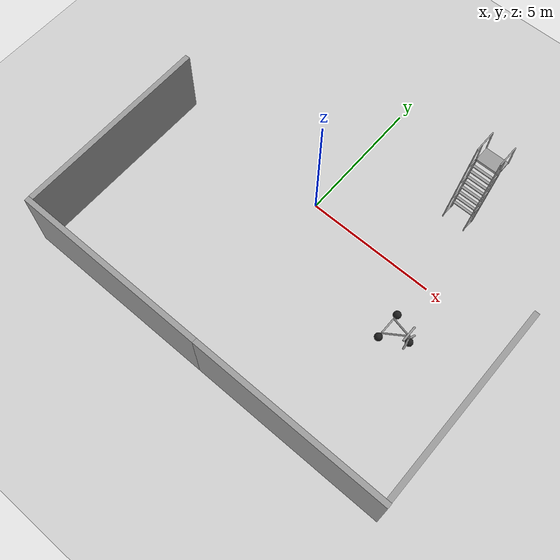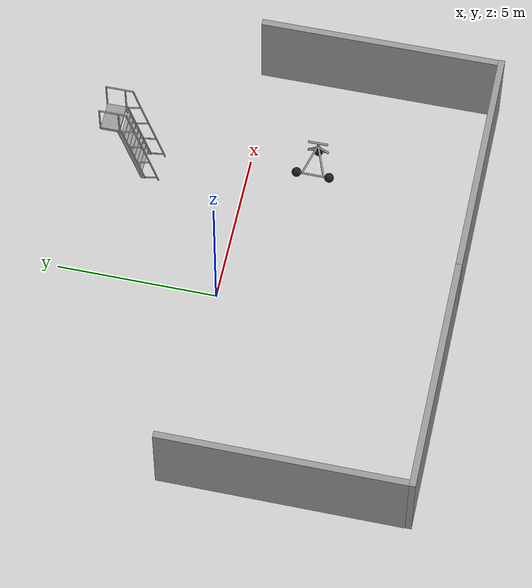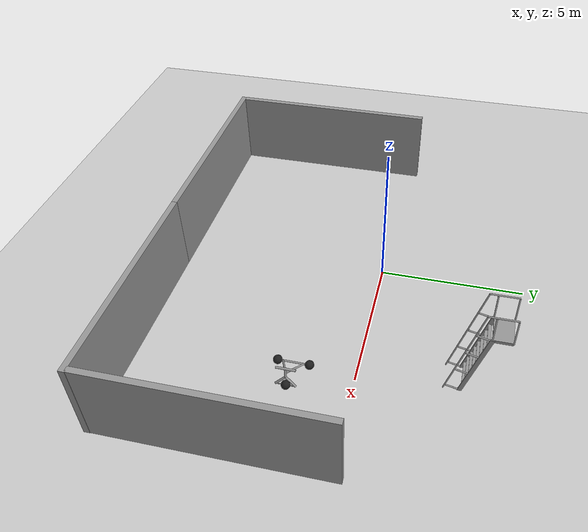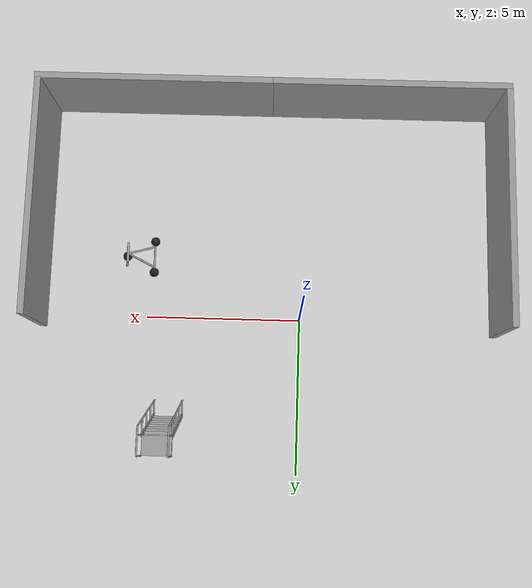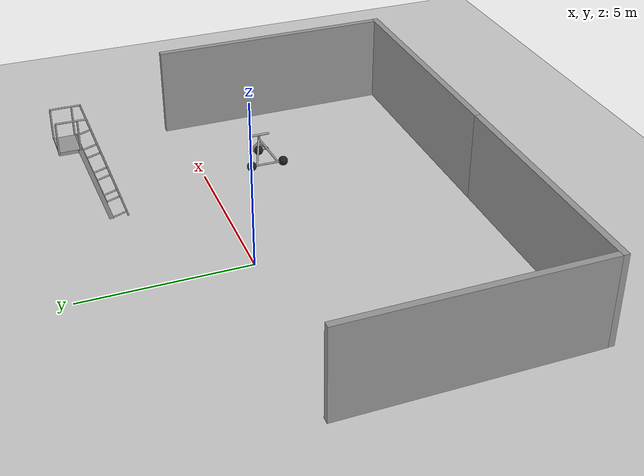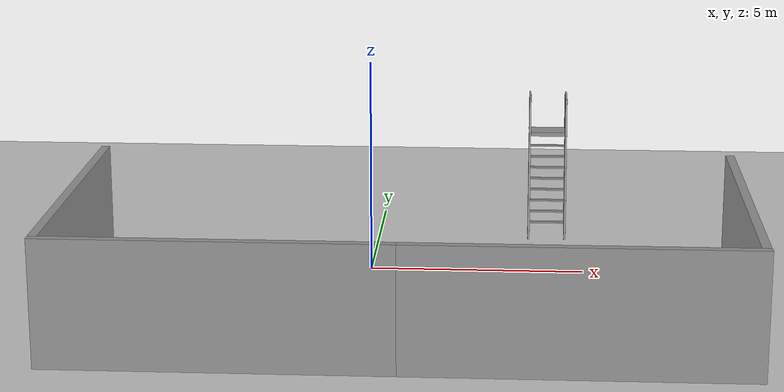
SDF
<sdf version="1.6">
 <world name="default">
  <model name="ground_plane">
   <static>1</static>
   <link name="link">
    <collision name="collision">
     <geometry><plane><normal>0 0 1</normal><size>100 100</size></plane></geometry>
     <surface>
      <contact><collide_bitmask>65535</collide_bitmask></contact>
      <friction><ode><mu>100</mu><mu2>50</mu2></ode></friction>
     </surface>
    </collision>
    <visual name="visual">
     <cast_shadows>0</cast_shadows>
     <geometry><plane><normal>0 0 1</normal><size>100 100</size></plane></geometry>
     <material>
      <script><uri>file://media/materials/scripts/gazebo.material</uri><name>Gazebo/Grey</name></script>
     </material>
    </visual>
   </link>
  </model>
  <model name="grey_wall_2">
   <static>1</static>
   <link name="link">
    <pose>0 0 1.4 0 -0 0</pose>
    <collision name="collision"><geometry><box><size>7.5 0.2 2.8</size></box></geometry></collision>
    <visual name="visual">
     <cast_shadows>0</cast_shadows>
     <geometry><box><size>7.5 0.2 2.8</size></box></geometry>
     <material>
      <script>
       <uri>model://grey_wall/materials/scripts</uri>
       <uri>model://grey_wall/materials/textures</uri>
       <name>vrc/grey_wall</name>
      </script>
     </material>
    </visual>
   </link>
   <pose>-6.37855 -3.34858 0 0 -0 1.57205</pose>
  </model>
  <model name="grey_wall_3">
   <static>1</static>
   <link name="link">
    <pose>0 0 1.4 0 -0 0</pose>
    <collision name="collision"><geometry><box><size>7.5 0.2 2.8</size></box></geometry></collision>
    <visual name="visual">
     <cast_shadows>0</cast_shadows>
     <geometry><box><size>7.5 0.2 2.8</size></box></geometry>
     <material>
      <script>
       <uri>model://grey_wall/materials/scripts</uri>
       <uri>model://grey_wall/materials/textures</uri>
       <name>vrc/grey_wall</name>
      </script>
     </material>
    </visual>
   </link>
   <pose>-2.71504 -7.18953 0 0 -0 0</pose>
  </model>
  <model name="grey_wall_4">
   <static>1</static>
   <link name="link">
    <pose>0 0 1.4 0 -0 0</pose>
    <collision name="collision"><geometry><box><size>7.5 0.2 2.8</size></box></geometry></collision>
    <visual name="visual">
     <cast_shadows>0</cast_shadows>
     <geometry><box><size>7.5 0.2 2.8</size></box></geometry>
     <material>
      <script>
       <uri>model://grey_wall/materials/scripts</uri>
       <uri>model://grey_wall/materials/textures</uri>
       <name>vrc/grey_wall</name>
      </script>
     </material>
    </visual>
   </link>
   <pose>4.77128 -7.18953 0 0 -0 0</pose>
  </model>
  <model name="grey_wall_5">
   <static>1</static>
   <link name="link">
    <pose>0 0 1.4 0 -0 0</pose>
    <collision name="collision"><geometry><box><size>7.5 0.2 2.8</size></box></geometry></collision>
    <visual name="visual">
     <cast_shadows>0</cast_shadows>
     <geometry><box><size>7.5 0.2 2.8</size></box></geometry>
     <material>
      <script>
       <uri>model://grey_wall/materials/scripts</uri>
       <uri>model://grey_wall/materials/textures</uri>
       <name>vrc/grey_wall</name>
      </script>
     </material>
    </visual>
   </link>
   <pose>8.40165 -3.37412 0 0 0 -1.56823</pose>
  </model>
  <model name="ladder_75deg_2rails">
   <static>1</static>
   <link name="step0">
    <pose>0 0.071453 0.266667 0 -0 0</pose>
    <inertial>
     <mass>9.75482</mass>
     <inertia>
      <ixx>0.00957124</ixx>
      <iyy>0.65963</iyy>
      <izz>0.666842</izz>
      <ixy>0</ixy>
      <ixz>0</ixz>
      <iyz>0</iyz>
     </inertia>
    </inertial>
    <collision name="collision"><geometry><box><size>0.9 0.1016 0.0381</size></box></geometry></collision>
    <visual name="visual">
     <geometry><box><size>0.9 0.1016 0.0381</size></box></geometry>
     <material>
      <script><uri>file://media/materials/scripts/gazebo.material</uri><name>Gazebo/Grey</name></script>
     </material>
    </visual>
   </link>
   <link name="step1">
    <pose>0 0.142906 0.533333 0 -0 0</pose>
    <inertial>
     <mass>9.75482</mass>
     <inertia>
      <ixx>0.00957124</ixx>
      <iyy>0.65963</iyy>
      <izz>0.666842</izz>
      <ixy>0</ixy>
      <ixz>0</ixz>
      <iyz>0</iyz>
     </inertia>
    </inertial>
    <collision name="collision"><geometry><box><size>0.9 0.1016 0.0381</size></box></geometry></collision>
    <visual name="visual">
     <geometry><box><size>0.9 0.1016 0.0381</size></box></geometry>
     <material>
      <script><uri>file://media/materials/scripts/gazebo.material</uri><name>Gazebo/Grey</name></script>
     </material>
    </visual>
   </link>
   <link name="step2">
    <pose>0 0.214359 0.8 0 -0 0</pose>
    <inertial>
     <mass>9.75482</mass>
     <inertia>
      <ixx>0.00957124</ixx>
      <iyy>0.65963</iyy>
      <izz>0.666842</izz>
      <ixy>0</ixy>
      <ixz>0</ixz>
      <iyz>0</iyz>
     </inertia>
    </inertial>
    <collision name="collision"><geometry><box><size>0.9 0.1016 0.0381</size></box></geometry></collision>
    <visual name="visual">
     <geometry><box><size>0.9 0.1016 0.0381</size></box></geometry>
     <material>
      <script><uri>file://media/materials/scripts/gazebo.material</uri><name>Gazebo/Grey</name></script>
     </material>
    </visual>
   </link>
   <link name="step3">
    <pose>0 0.285812 1.06667 0 -0 0</pose>
    <inertial>
     <mass>9.75482</mass>
     <inertia>
      <ixx>0.00957124</ixx>
      <iyy>0.65963</iyy>
      <izz>0.666842</izz>
      <ixy>0</ixy>
      <ixz>0</ixz>
      <iyz>0</iyz>
     </inertia>
    </inertial>
    <collision name="collision"><geometry><box><size>0.9 0.1016 0.0381</size></box></geometry></collision>
    <visual name="visual">
     <geometry><box><size>0.9 0.1016 0.0381</size></box></geometry>
     <material>
      <script><uri>file://media/materials/scripts/gazebo.material</uri><name>Gazebo/Grey</name></script>
     </material>
    </visual>
   </link>
   <link name="step4">
    <pose>0 0.357266 1.33333 0 -0 0</pose>
    <inertial>
     <mass>9.75482</mass>
     <inertia>
      <ixx>0.00957124</ixx>
      <iyy>0.65963</iyy>
      <izz>0.666842</izz>
      <ixy>0</ixy>
      <ixz>0</ixz>
      <iyz>0</iyz>
     </inertia>
    </inertial>
    <collision name="collision"><geometry><box><size>0.9 0.1016 0.0381</size></box></geometry></collision>
    <visual name="visual">
     <geometry><box><size>0.9 0.1016 0.0381</size></box></geometry>
     <material>
      <script><uri>file://media/materials/scripts/gazebo.material</uri><name>Gazebo/Grey</name></script>
     </material>
    </visual>
   </link>
   <link name="step5">
    <pose>0 0.428719 1.6 0 -0 0</pose>
    <inertial>
     <mass>9.75482</mass>
     <inertia>
      <ixx>0.00957124</ixx>
      <iyy>0.65963</iyy>
      <izz>0.666842</izz>
      <ixy>0</ixy>
      <ixz>0</ixz>
      <iyz>0</iyz>
     </inertia>
    </inertial>
    <collision name="collision"><geometry><box><size>0.9 0.1016 0.0381</size></box></geometry></collision>
    <visual name="visual">
     <geometry><box><size>0.9 0.1016 0.0381</size></box></geometry>
     <material>
      <script><uri>file://media/materials/scripts/gazebo.material</uri><name>Gazebo/Grey</name></script>
     </material>
    </visual>
   </link>
   <link name="step6">
    <pose>0 0.500172 1.86667 0 -0 0</pose>
    <inertial>
     <mass>9.75482</mass>
     <inertia>
      <ixx>0.00957124</ixx>
      <iyy>0.65963</iyy>
      <izz>0.666842</izz>
      <ixy>0</ixy>
      <ixz>0</ixz>
      <iyz>0</iyz>
     </inertia>
    </inertial>
    <collision name="collision"><geometry><box><size>0.9 0.1016 0.0381</size></box></geometry></collision>
    <visual name="visual">
     <geometry><box><size>0.9 0.1016 0.0381</size></box></geometry>
     <material>
      <script><uri>file://media/materials/scripts/gazebo.material</uri><name>Gazebo/Grey</name></script>
     </material>
    </visual>
   </link>
   <link name="step7">
    <pose>0 0.571625 2.13333 0 -0 0</pose>
    <inertial>
     <mass>9.75482</mass>
     <inertia>
      <ixx>0.00957124</ixx>
      <iyy>0.65963</iyy>
      <izz>0.666842</izz>
      <ixy>0</ixy>
      <ixz>0</ixz>
      <iyz>0</iyz>
     </inertia>
    </inertial>
    <collision name="collision"><geometry><box><size>0.9 0.1016 0.0381</size></box></geometry></collision>
    <visual name="visual">
     <geometry><box><size>0.9 0.1016 0.0381</size></box></geometry>
     <material>
      <script><uri>file://media/materials/scripts/gazebo.material</uri><name>Gazebo/Grey</name></script>
     </material>
    </visual>
   </link>
   <link name="landing">
    <pose>0 0.943078 2.4 0 -0 0</pose>
    <inertial>
     <mass>57.6072</mass>
     <inertia><ixx>1.73518</ixx><iyy>3.89545</iyy><izz>5.6167</izz><ixy>0</ixy><ixz>0</ixz><iyz>0</iyz></inertia>
    </inertial>
    <collision name="collision"><geometry><box><size>0.9 0.6 0.1016</size></box></geometry></collision>
    <visual name="visual">
     <geometry><box><size>0.9 0.6 0.1016</size></box></geometry>
     <material>
      <script><uri>file://media/materials/scripts/gazebo.material</uri><name>Gazebo/Grey</name></script>
     </material>
    </visual>
   </link>
   <link name="left_side_wall">
    <pose>-0.45 0.321539 1.2 1.309 -0 0</pose>
    <collision name="collision"><geometry><box><size>0.0508 2.56466 0.13</size></box></geometry></collision>
    <visual name="visual">
     <geometry><box><size>0.0508 2.56466 0.13</size></box></geometry>
     <material>
      <script><uri>file://media/materials/scripts/gazebo.material</uri><name>Gazebo/Grey</name></script>
     </material>
    </visual>
   </link>
   <link name="right_side_wall">
    <pose>0.45 0.321539 1.2 1.309 -0 0</pose>
    <collision name="collision"><geometry><box><size>0.0508 2.56466 0.13</size></box></geometry></collision>
    <visual name="visual">
     <geometry><box><size>0.0508 2.56466 0.13</size></box></geometry>
     <material>
      <script><uri>file://media/materials/scripts/gazebo.material</uri><name>Gazebo/Grey</name></script>
     </material>
    </visual>
   </link>
   <link name="left_railing_long">
    <pose>-0.45 -0.053461 1.66651 -0.261799 0 0</pose>
    <collision name="collision">
     <geometry><cylinder><radius>0.02413</radius><length>3.51529</length></cylinder></geometry>
    </collision>
    <visual name="visual">
     <geometry><cylinder><radius>0.02413</radius><length>3.51529</length></cylinder></geometry>
     <material>
      <script><uri>file://media/materials/scripts/gazebo.material</uri><name>Gazebo/Grey</name></script>
     </material>
    </visual>
   </link>
   <link name="left_railing_upright0">
    <pose>-0.45 -0.210089 0.056293 1.309 -0 0</pose>
    <collision name="collision">
     <geometry><cylinder><radius>0.02413</radius><length>0.482963</length></cylinder></geometry>
    </collision>
    <visual name="visual">
     <geometry><cylinder><radius>0.02413</radius><length>0.482963</length></cylinder></geometry>
     <material>
      <script><uri>file://media/materials/scripts/gazebo.material</uri><name>Gazebo/Grey</name></script>
     </material>
    </visual>
   </link>
   <link name="left_railing_upright1">
    <pose>-0.45 0.00427 0.856293 1.309 -0 0</pose>
    <collision name="collision">
     <geometry><cylinder><radius>0.02413</radius><length>0.482963</length></cylinder></geometry>
    </collision>
    <visual name="visual">
     <geometry><cylinder><radius>0.02413</radius><length>0.482963</length></cylinder></geometry>
     <material>
      <script><uri>file://media/materials/scripts/gazebo.material</uri><name>Gazebo/Grey</name></script>
     </material>
    </visual>
   </link>
   <link name="left_railing_upright2">
    <pose>-0.45 0.21863 1.65629 1.309 -0 0</pose>
    <collision name="collision">
     <geometry><cylinder><radius>0.02413</radius><length>0.482963</length></cylinder></geometry>
    </collision>
    <visual name="visual">
     <geometry><cylinder><radius>0.02413</radius><length>0.482963</length></cylinder></geometry>
     <material>
      <script><uri>file://media/materials/scripts/gazebo.material</uri><name>Gazebo/Grey</name></script>
     </material>
    </visual>
   </link>
   <link name="left_railing_upright3">
    <pose>-0.45 0.432989 2.45629 1.309 -0 0</pose>
    <collision name="collision">
     <geometry><cylinder><radius>0.02413</radius><length>0.482963</length></cylinder></geometry>
    </collision>
    <visual name="visual">
     <geometry><cylinder><radius>0.02413</radius><length>0.482963</length></cylinder></geometry>
     <material>
      <script><uri>file://media/materials/scripts/gazebo.material</uri><name>Gazebo/Grey</name></script>
     </material>
    </visual>
   </link>
   <link name="left_railing_landing_top">
    <pose>-0.45 0.818078 3.35714 1.5708 -0 0</pose>
    <collision name="collision">
     <geometry><cylinder><radius>0.02413</radius><length>0.87413</length></cylinder></geometry>
    </collision>
    <visual name="visual">
     <geometry><cylinder><radius>0.02413</radius><length>0.87413</length></cylinder></geometry>
     <material>
      <script><uri>file://media/materials/scripts/gazebo.material</uri><name>Gazebo/Grey</name></script>
     </material>
    </visual>
   </link>
   <link name="left_railing_landing_upright_0">
    <pose>-0.45 0.643078 2.86651 0 -0 0</pose>
    <collision name="collision">
     <geometry><cylinder><radius>0.02413</radius><length>0.933013</length></cylinder></geometry>
    </collision>
    <visual name="visual">
     <geometry><cylinder><radius>0.02413</radius><length>0.933013</length></cylinder></geometry>
     <material>
      <script><uri>file://media/materials/scripts/gazebo.material</uri><name>Gazebo/Grey</name></script>
     </material>
    </visual>
   </link>
   <link name="left_railing_landing_upright_1">
    <pose>-0.45 1.24308 2.86651 0 -0 0</pose>
    <collision name="collision">
     <geometry><cylinder><radius>0.02413</radius><length>0.933013</length></cylinder></geometry>
    </collision>
    <visual name="visual">
     <geometry><cylinder><radius>0.02413</radius><length>0.933013</length></cylinder></geometry>
     <material>
      <script><uri>file://media/materials/scripts/gazebo.material</uri><name>Gazebo/Grey</name></script>
     </material>
    </visual>
   </link>
   <link name="right_railing_long">
    <pose>0.45 -0.053461 1.66651 -0.261799 0 0</pose>
    <collision name="collision">
     <geometry><cylinder><radius>0.02413</radius><length>3.51529</length></cylinder></geometry>
    </collision>
    <visual name="visual">
     <geometry><cylinder><radius>0.02413</radius><length>3.51529</length></cylinder></geometry>
     <material>
      <script><uri>file://media/materials/scripts/gazebo.material</uri><name>Gazebo/Grey</name></script>
     </material>
    </visual>
   </link>
   <link name="right_railing_upright0">
    <pose>0.45 -0.210089 0.056293 1.309 -0 0</pose>
    <collision name="collision">
     <geometry><cylinder><radius>0.02413</radius><length>0.482963</length></cylinder></geometry>
    </collision>
    <visual name="visual">
     <geometry><cylinder><radius>0.02413</radius><length>0.482963</length></cylinder></geometry>
     <material>
      <script><uri>file://media/materials/scripts/gazebo.material</uri><name>Gazebo/Grey</name></script>
     </material>
    </visual>
   </link>
   <link name="right_railing_upright1">
    <pose>0.45 0.00427 0.856293 1.309 -0 0</pose>
    <collision name="collision">
     <geometry><cylinder><radius>0.02413</radius><length>0.482963</length></cylinder></geometry>
    </collision>
    <visual name="visual">
     <geometry><cylinder><radius>0.02413</radius><length>0.482963</length></cylinder></geometry>
     <material>
      <script><uri>file://media/materials/scripts/gazebo.material</uri><name>Gazebo/Grey</name></script>
     </material>
    </visual>
   </link>
   <link name="right_railing_upright2">
    <pose>0.45 0.21863 1.65629 1.309 -0 0</pose>
    <collision name="collision">
     <geometry><cylinder><radius>0.02413</radius><length>0.482963</length></cylinder></geometry>
    </collision>
    <visual name="visual">
     <geometry><cylinder><radius>0.02413</radius><length>0.482963</length></cylinder></geometry>
     <material>
      <script><uri>file://media/materials/scripts/gazebo.material</uri><name>Gazebo/Grey</name></script>
     </material>
    </visual>
   </link>
   <link name="right_railing_upright3">
    <pose>0.45 0.432989 2.45629 1.309 -0 0</pose>
    <collision name="collision">
     <geometry><cylinder><radius>0.02413</radius><length>0.482963</length></cylinder></geometry>
    </collision>
    <visual name="visual">
     <geometry><cylinder><radius>0.02413</radius><length>0.482963</length></cylinder></geometry>
     <material>
      <script><uri>file://media/materials/scripts/gazebo.material</uri><name>Gazebo/Grey</name></script>
     </material>
    </visual>
   </link>
   <link name="right_railing_landing_top">
    <pose>0.45 0.818078 3.35714 1.5708 -0 0</pose>
    <collision name="collision">
     <geometry><cylinder><radius>0.02413</radius><length>0.87413</length></cylinder></geometry>
    </collision>
    <visual name="visual">
     <geometry><cylinder><radius>0.02413</radius><length>0.87413</length></cylinder></geometry>
     <material>
      <script><uri>file://media/materials/scripts/gazebo.material</uri><name>Gazebo/Grey</name></script>
     </material>
    </visual>
   </link>
   <link name="right_railing_landing_upright_0">
    <pose>0.45 0.643078 2.86651 0 -0 0</pose>
    <collision name="collision">
     <geometry><cylinder><radius>0.02413</radius><length>0.933013</length></cylinder></geometry>
    </collision>
    <visual name="visual">
     <geometry><cylinder><radius>0.02413</radius><length>0.933013</length></cylinder></geometry>
     <material>
      <script><uri>file://media/materials/scripts/gazebo.material</uri><name>Gazebo/Grey</name></script>
     </material>
    </visual>
   </link>
   <link name="right_railing_landing_upright_1">
    <pose>0.45 1.24308 2.86651 0 -0 0</pose>
    <collision name="collision">
     <geometry><cylinder><radius>0.02413</radius><length>0.933013</length></cylinder></geometry>
    </collision>
    <visual name="visual">
     <geometry><cylinder><radius>0.02413</radius><length>0.933013</length></cylinder></geometry>
     <material>
      <script><uri>file://media/materials/scripts/gazebo.material</uri><name>Gazebo/Grey</name></script>
     </material>
    </visual>
   </link>
   <pose>4.17604 3.20232 0 0 -0 0</pose>
  </model>
  <model name="trisphere_cycle">
   <link name="frame">
    <pose>-0.408559 0 0.385023 0 -0.522021 0</pose>
    <inertial>
     <mass>10</mass>
     <inertia><ixx>0.228</ixx><iyy>0.743521</iyy><izz>0.965521</izz><ixy>0</ixy><ixz>0</ixz><iyz>0</iyz></inertia>
    </inertial>
    <collision name="axle_collision">
     <pose>-0.471335 0 0 1.5708 -0 0</pose>
     <geometry><cylinder><length>1.03923</length><radius>0.03</radius></cylinder></geometry>
    </collision>
    <visual name="axle_visual">
     <pose>-0.471335 0 0 1.5708 -0 0</pose>
     <geometry><cylinder><length>1.03923</length><radius>0.03</radius></cylinder></geometry>
     <material>
      <script><uri>file://media/materials/scripts/gazebo.material</uri><name>Gazebo/Grey</name></script>
     </material>
    </visual>
    <collision name="frame_left_collision">
     <pose>0 0.171552 0 -2.79253 1.57079 3.14159</pose>
     <geometry><cylinder><length>1.00317</length><radius>0.03</radius></cylinder></geometry>
    </collision>
    <visual name="frame_left_visual">
     <pose>0 0.171552 0 -2.79253 1.57079 3.14159</pose>
     <geometry><cylinder><length>1.00317</length><radius>0.03</radius></cylinder></geometry>
     <material>
      <script><uri>file://media/materials/scripts/gazebo.material</uri><name>Gazebo/Grey</name></script>
     </material>
    </visual>
    <collision name="frame_right_collision">
     <pose>0 -0.171552 0 2.79253 1.57079 -3.14159</pose>
     <geometry><cylinder><length>1.00317</length><radius>0.03</radius></cylinder></geometry>
    </collision>
    <visual name="frame_right_visual">
     <pose>0 -0.171552 0 2.79253 1.57079 -3.14159</pose>
     <geometry><cylinder><length>1.00317</length><radius>0.03</radius></cylinder></geometry>
     <material>
      <script><uri>file://media/materials/scripts/gazebo.material</uri><name>Gazebo/Grey</name></script>
     </material>
    </visual>
   </link>
   <link name="fork">
    <pose>0.041441 0 0.385023 0 -0.174533 0</pose>
    <inertial>
     <mass>3</mass>
     <inertia>
      <ixx>0.158203</ixx>
      <iyy>0.0583594</iyy>
      <izz>0.102656</izz>
      <ixy>0</ixy>
      <ixz>0</ixz>
      <iyz>0</iyz>
     </inertia>
    </inertial>
    <collision name="handlebars_collision">
     <pose>0 0 0.397748 1.5708 -0 0</pose>
     <geometry><cylinder><length>0.636396</length><radius>0.0375</radius></cylinder></geometry>
    </collision>
    <visual name="handlebars_visual">
     <pose>0 0 0.397748 1.5708 -0 0</pose>
     <geometry><cylinder><length>0.636396</length><radius>0.0375</radius></cylinder></geometry>
     <material>
      <script><uri>file://media/materials/scripts/gazebo.material</uri><name>Gazebo/Grey</name></script>
     </material>
    </visual>
    <collision name="headtube_collision">
     <pose>0 0 0.238649 0 -0 0</pose>
     <geometry><cylinder><length>0.318198</length><radius>0.0375</radius></cylinder></geometry>
    </collision>
    <visual name="headtube_visual">
     <pose>0 0 0.238649 0 -0 0</pose>
     <geometry><cylinder><length>0.318198</length><radius>0.0375</radius></cylinder></geometry>
     <material>
      <script><uri>file://media/materials/scripts/gazebo.material</uri><name>Gazebo/Grey</name></script>
     </material>
    </visual>
    <collision name="spindle_collision">
     <pose>0 0 -0.238649 1.5708 -0 0</pose>
     <geometry><cylinder><length>0.636396</length><radius>0.015</radius></cylinder></geometry>
    </collision>
    <visual name="spindle_visual">
     <pose>0 0 -0.238649 1.5708 -0 0</pose>
     <geometry><cylinder><length>0.636396</length><radius>0.015</radius></cylinder></geometry>
     <material>
      <script><uri>file://media/materials/scripts/gazebo.material</uri><name>Gazebo/Grey</name></script>
     </material>
    </visual>
    <collision name="fork_left_collision">
     <pose>0 0.159099 -0.07955 0.785398 -0 0</pose>
     <geometry><cylinder><length>0.45</length><radius>0.0375</radius></cylinder></geometry>
    </collision>
    <visual name="fork_left_visual">
     <pose>0 0.159099 -0.07955 0.785398 -0 0</pose>
     <geometry><cylinder><length>0.45</length><radius>0.0375</radius></cylinder></geometry>
     <material>
      <script><uri>file://media/materials/scripts/gazebo.material</uri><name>Gazebo/Grey</name></script>
     </material>
    </visual>
    <collision name="fork_right_collision">
     <pose>0 -0.159099 -0.07955 -0.785398 0 0</pose>
     <geometry><cylinder><length>0.45</length><radius>0.0375</radius></cylinder></geometry>
    </collision>
    <visual name="fork_right_visual">
     <pose>0 -0.159099 -0.07955 -0.785398 0 0</pose>
     <geometry><cylinder><length>0.45</length><radius>0.0375</radius></cylinder></geometry>
     <material>
      <script><uri>file://media/materials/scripts/gazebo.material</uri><name>Gazebo/Grey</name></script>
     </material>
    </visual>
   </link>
   <link name="wheel_front">
    <pose>0.082882 0 0.15 0 -0 0</pose>
    <inertial>
     <mass>0.5</mass>
     <inertia><ixx>0.0045</ixx><iyy>0.0045</iyy><izz>0.0045</izz><ixy>0</ixy><ixz>0</ixz><iyz>0</iyz></inertia>
    </inertial>
    <collision name="collision">
     <geometry><sphere><radius>0.15</radius></sphere></geometry>
     <surface><contact><ode><kp>1e+08</kp><kd>1</kd><min_depth>0.0005</min_depth></ode></contact></surface>
    </collision>
    <visual name="visual">
     <geometry><sphere><radius>0.15</radius></sphere></geometry>
     <material>
      <script><uri>file://media/materials/scripts/gazebo.material</uri><name>Gazebo/Black</name></script>
     </material>
    </visual>
   </link>
   <joint name="wheel_front_steer" type="revolute">
    <parent>frame</parent>
    <child>fork</child>
    <axis>
     <xyz>0 0 1</xyz>
     <limit><lower>-0.959931</lower><upper>0.959931</upper></limit>
     <use_parent_model_frame>0</use_parent_model_frame>
     <dynamics><spring_reference>0</spring_reference><spring_stiffness>0</spring_stiffness></dynamics>
    </axis>
   </joint>
   <joint name="wheel_front_spin" type="revolute">
    <parent>fork</parent>
    <child>wheel_front</child>
    <axis>
     <xyz>0 1 0</xyz>
     <use_parent_model_frame>0</use_parent_model_frame>
     <limit><lower>-1e+16</lower><upper>1e+16</upper></limit>
     <dynamics><spring_reference>0</spring_reference><spring_stiffness>0</spring_stiffness></dynamics>
    </axis>
   </joint>
   <link name="wheel_rear_left">
    <pose>-0.817118 0.519615 0.15 0 -0 0</pose>
    <inertial>
     <mass>0.5</mass>
     <inertia><ixx>0.0045</ixx><iyy>0.0045</iyy><izz>0.0045</izz><ixy>0</ixy><ixz>0</ixz><iyz>0</iyz></inertia>
    </inertial>
    <collision name="collision">
     <geometry><sphere><radius>0.15</radius></sphere></geometry>
     <surface><contact><ode><kp>1e+08</kp><kd>1</kd><min_depth>0.0005</min_depth></ode></contact></surface>
    </collision>
    <visual name="visual">
     <geometry><sphere><radius>0.15</radius></sphere></geometry>
     <material>
      <script><uri>file://media/materials/scripts/gazebo.material</uri><name>Gazebo/Black</name></script>
     </material>
    </visual>
   </link>
   <joint name="wheel_rear_left_spin" type="revolute">
    <parent>frame</parent>
    <child>wheel_rear_left</child>
    <axis>
     <xyz>0 1 0</xyz>
     <use_parent_model_frame>0</use_parent_model_frame>
     <limit><lower>-1e+16</lower><upper>1e+16</upper></limit>
     <dynamics><spring_reference>0</spring_reference><spring_stiffness>0</spring_stiffness></dynamics>
    </axis>
   </joint>
   <link name="wheel_rear_right">
    <pose>-0.817118 -0.519615 0.15 0 -0 0</pose>
    <inertial>
     <mass>0.5</mass>
     <inertia><ixx>0.0045</ixx><iyy>0.0045</iyy><izz>0.0045</izz><ixy>0</ixy><ixz>0</ixz><iyz>0</iyz></inertia>
    </inertial>
    <collision name="collision">
     <geometry><sphere><radius>0.15</radius></sphere></geometry>
     <surface><contact><ode><kp>1e+08</kp><kd>1</kd><min_depth>0.0005</min_depth></ode></contact></surface>
    </collision>
    <visual name="visual">
     <geometry><sphere><radius>0.15</radius></sphere></geometry>
     <material>
      <script><uri>file://media/materials/scripts/gazebo.material</uri><name>Gazebo/Black</name></script>
     </material>
    </visual>
   </link>
   <joint name="wheel_rear_right_spin" type="revolute">
    <parent>frame</parent>
    <child>wheel_rear_right</child>
    <axis>
     <xyz>0 1 0</xyz>
     <use_parent_model_frame>0</use_parent_model_frame>
     <limit><lower>-1e+16</lower><upper>1e+16</upper></limit>
     <dynamics><spring_reference>0</spring_reference><spring_stiffness>0</spring_stiffness></dynamics>
    </axis>
   </joint>
   <pose>5.64763 -2.00608 -0.000501 0 1e-06 -0.001035</pose>
  </model>
 </world>
</sdf>
